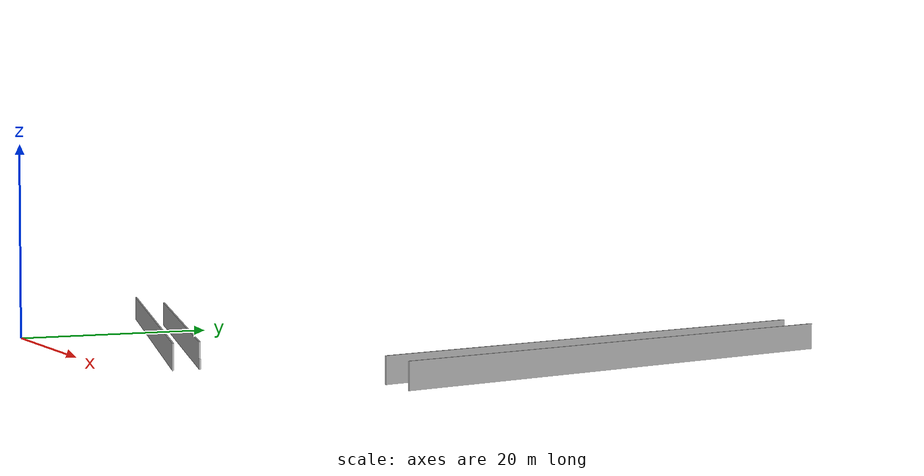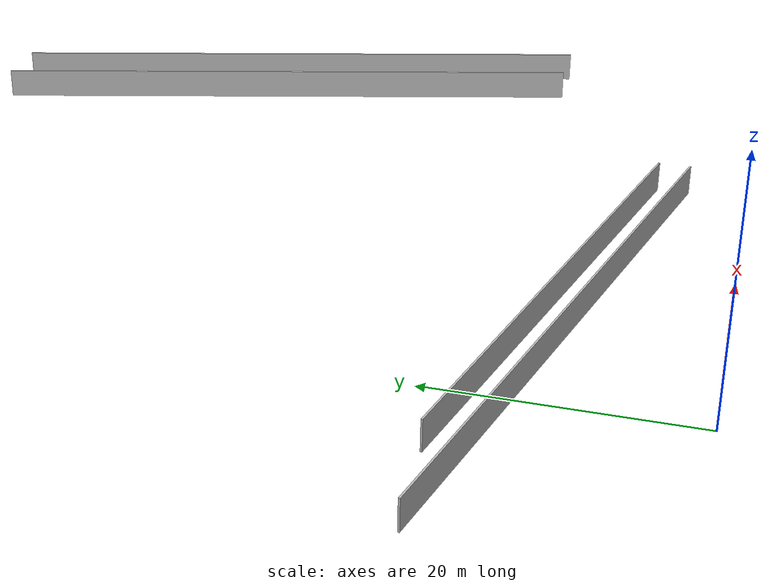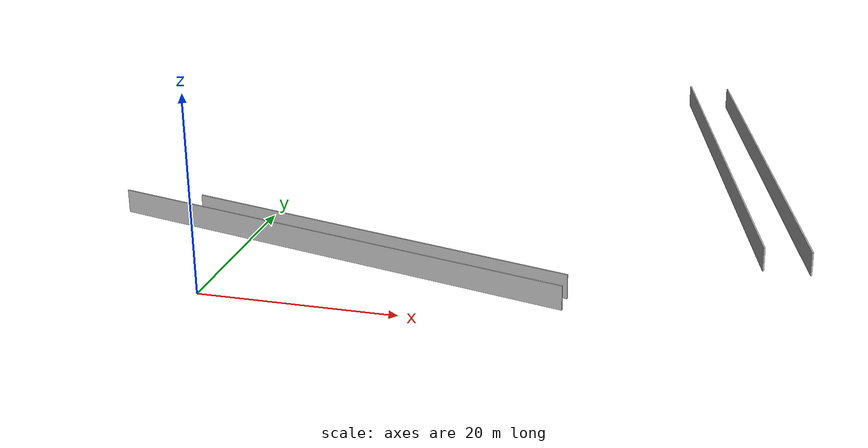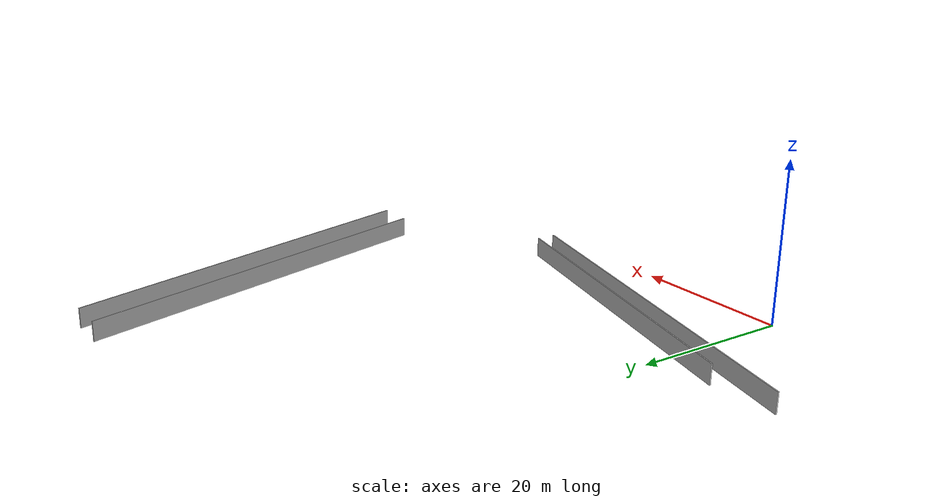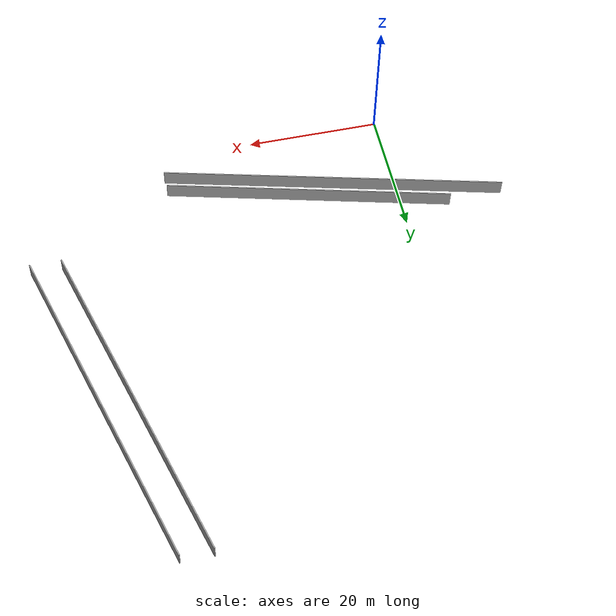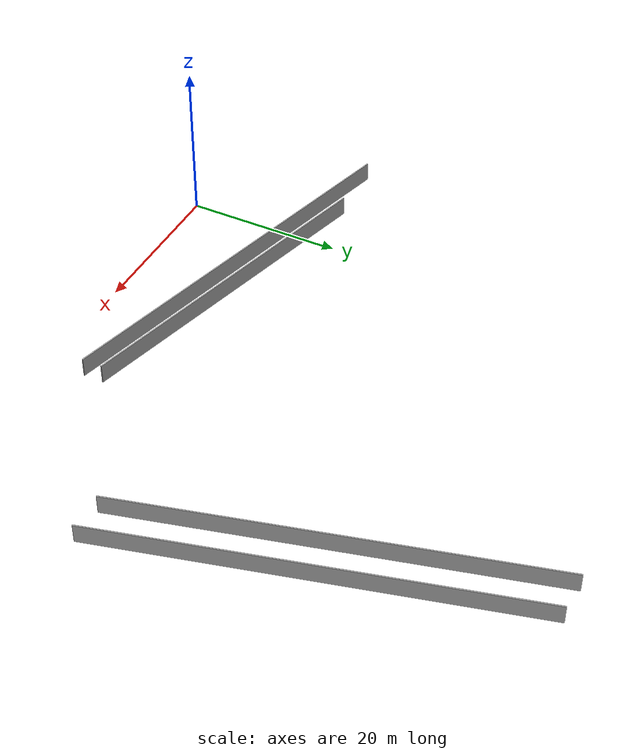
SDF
<?xml version="1.0" ?>
<sdf version="1.6">
  <model name="sps_0607">
    <pose frame="">0 0 0 0 -0 0</pose>
    <static>1</static>
    <self_collide>0</self_collide>
    <allow_auto_disable>0</allow_auto_disable>
    <link name="Wall4">
      <kinematic>0</kinematic>
      <gravity>1</gravity>
      <self_collide>0</self_collide>
      <collision name="collision">
        <geometry>
          <box>
            <size>43.073 0.15 2.5</size>
          </box>
        </geometry>
        <pose frame="">0 0 0 0 -0 0</pose>
      </collision>
      <visual name="visual">
        <geometry>
          <box>
            <size>43.073 0.15 2.5</size>
          </box>
        </geometry>
        <pose frame="">0 0 0 0 -0 0</pose>
        <cast_shadows>1</cast_shadows>
        <transparency>0.0</transparency>
      </visual>
      <pose frame="">13.5942 12.5971 1.25 0 0 -0.248456</pose>
    </link>
    <link name="Wall95">
      <kinematic>0</kinematic>
      <gravity>1</gravity>
      <self_collide>0</self_collide>
      <collision name="collision">
        <geometry>
          <box>
            <size>51.7448 0.15 2.5</size>
          </box>
        </geometry>
        <pose frame="">0 0 0 0 -0 0</pose>
      </collision>
      <visual name="visual">
        <geometry>
          <box>
            <size>51.7448 0.15 2.5</size>
          </box>
        </geometry>
        <pose frame="">0 0 0 0 -0 0</pose>
        <cast_shadows>1</cast_shadows>
        <transparency>0.0</transparency>
      </visual>
      <pose frame="">49.9894 42.8931 1.25 0 -0 1.83122</pose>
    </link>
    <link name="Wall407">
      <kinematic>0</kinematic>
      <gravity>1</gravity>
      <self_collide>0</self_collide>
      <collision name="collision">
        <geometry>
          <box>
            <size>51.5614 0.15 2.5</size>
          </box>
        </geometry>
        <pose frame="">0 0 0 0 -0 0</pose>
      </collision>
      <visual name="visual">
        <geometry>
          <box>
            <size>51.5614 0.15 2.5</size>
          </box>
        </geometry>
        <pose frame="">0 0 0 0 -0 0</pose>
        <cast_shadows>1</cast_shadows>
        <transparency>0.0</transparency>
      </visual>
      <pose frame="">9.46944 11.0574 1.25 0 -0 2.89487</pose>
    </link>
    <link name="Wall501">
      <kinematic>0</kinematic>
      <gravity>1</gravity>
      <self_collide>0</self_collide>
      <collision name="collision">
        <geometry>
          <box>
            <size>51.7448 0.15 2.5</size>
          </box>
        </geometry>
        <pose frame="">0 0 0 0 -0 0</pose>
      </collision>
      <visual name="visual">
        <geometry>
          <box>
            <size>51.7448 0.15 2.5</size>
          </box>
        </geometry>
        <pose frame="">0 0 0 0 -0 0</pose>
        <cast_shadows>1</cast_shadows>
        <transparency>0.0</transparency>
      </visual>
      <pose frame="">45.3319 42.8931 1.25 0 -0 1.83122</pose>
    </link>
  </model>
</sdf>
